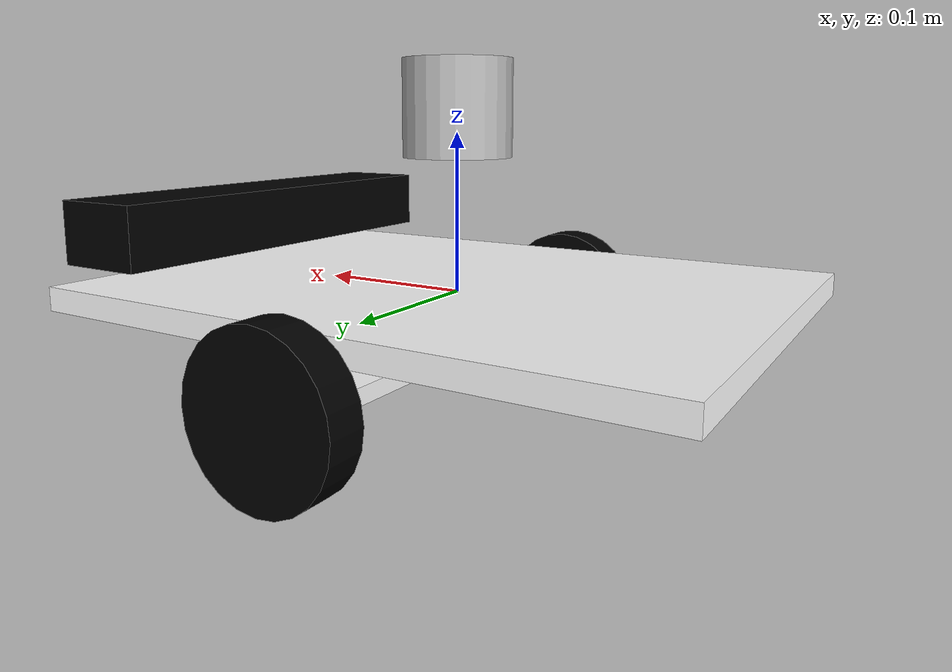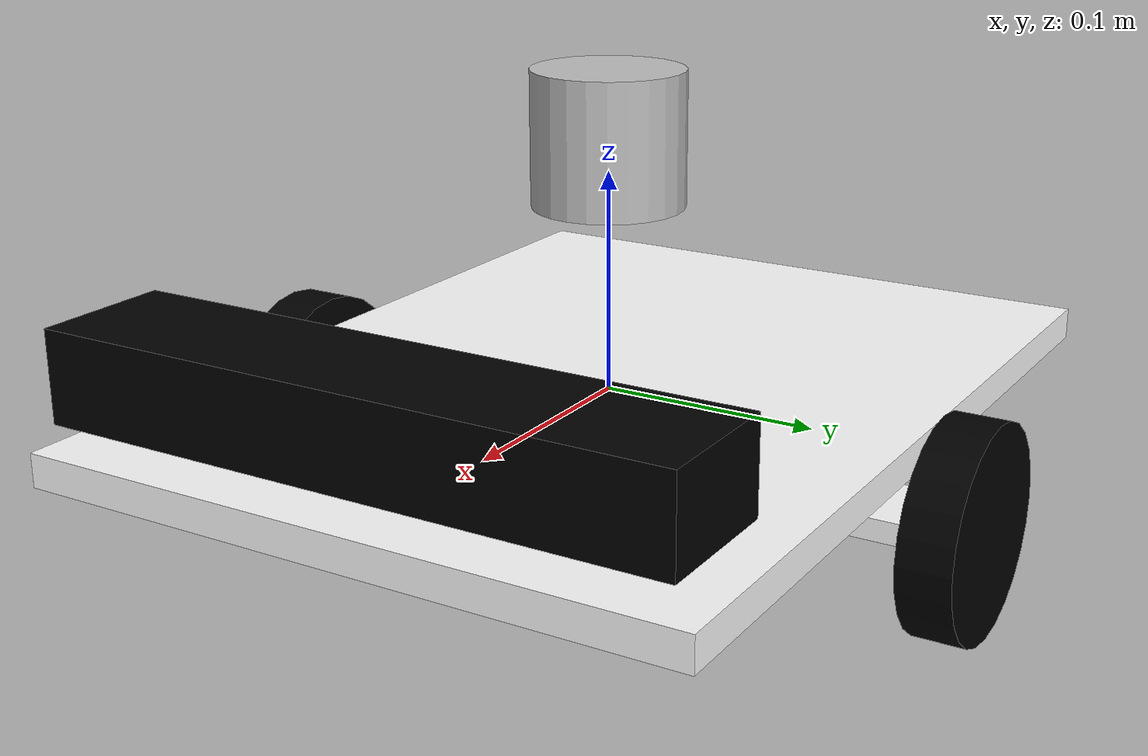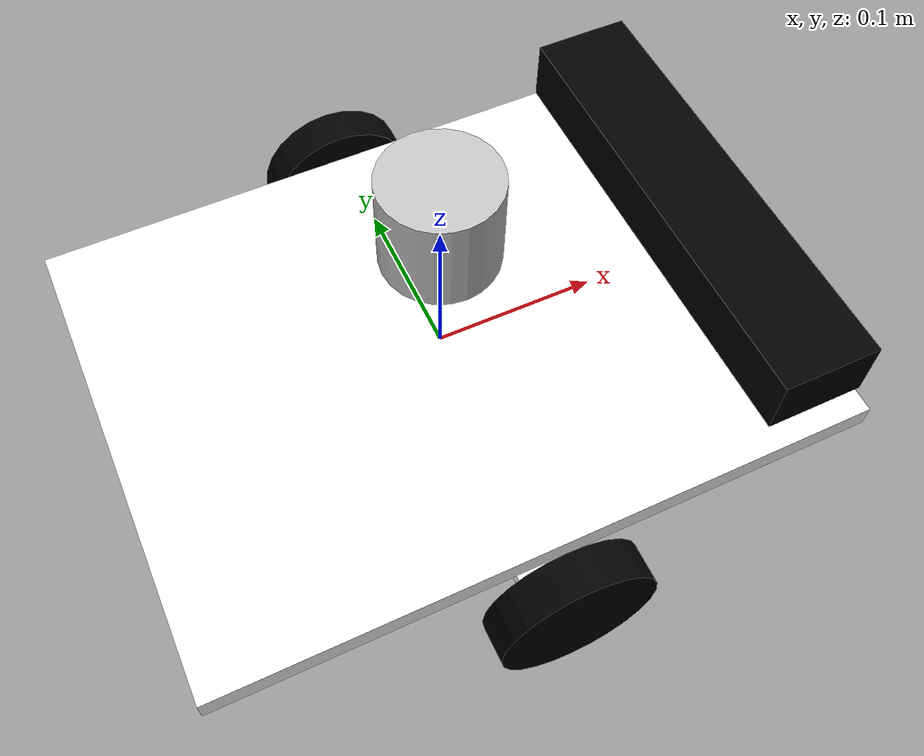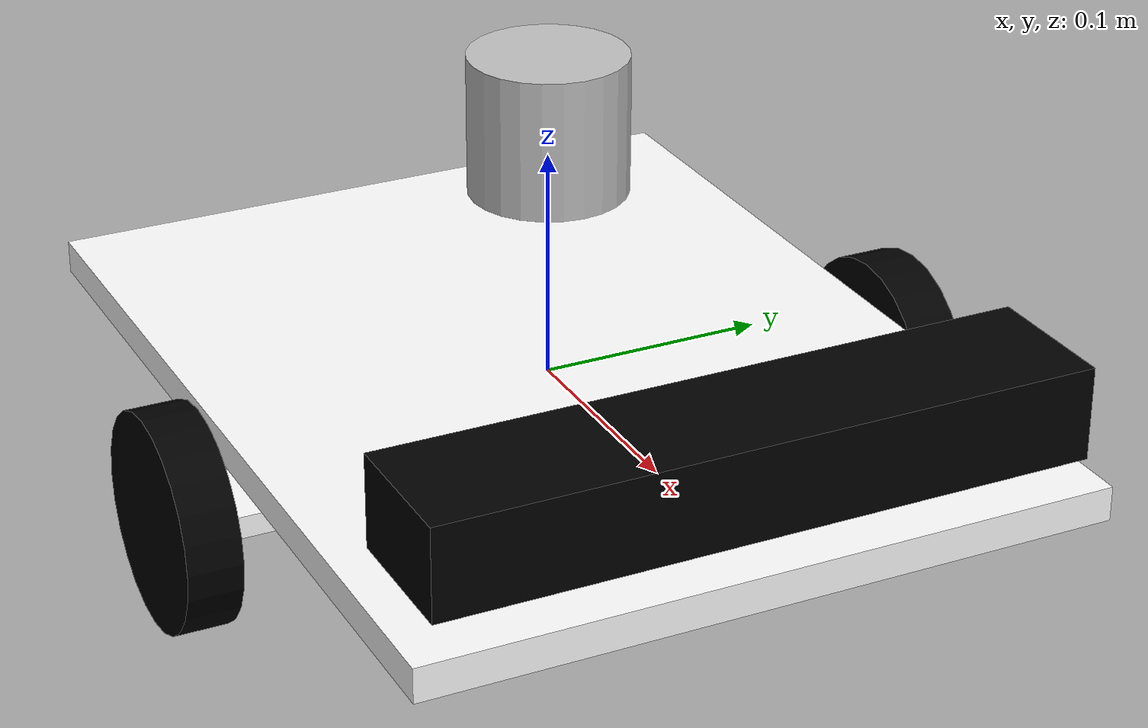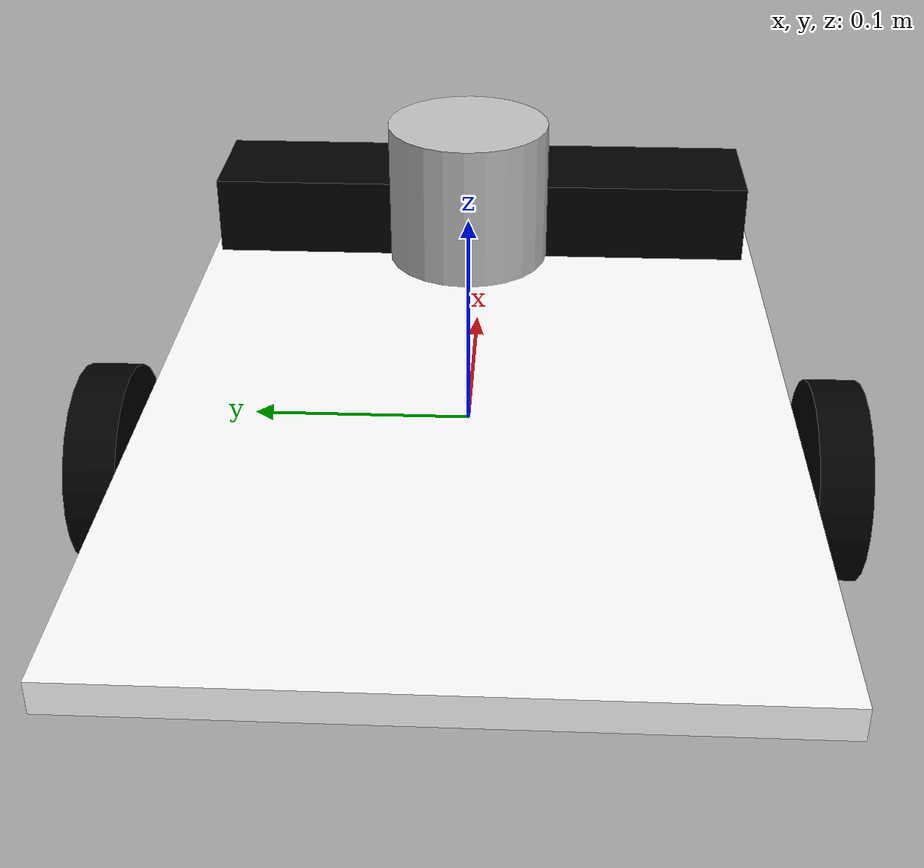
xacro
<?xml version="1.0"?>
<robot name="rosbot" xmlns:xacro="http://www.ros.org/wiki/xacro">
    <link name="base_link">
      <visual>
        <geometry>
          <box size="0.40 0.30 0.015"/>
        </geometry>
        <origin rpy="0 0 0" xyz="0 0 0"/>
        <material name="white">
          <color rgba="1 1 1 1"/>
        </material>
      </visual>
    </link>

    <link name="wheel_left">
      <visual>
        <geometry>
          <cylinder length="0.024" radius="0.0475"/>
        </geometry>
        <origin rpy="1.57 0 0" xyz="0 0.17 -0.03"/>
        <material name="black">
          <color rgba="0 0 0 1"/>
        </material>
      </visual>
    </link>

    <link name="wheel_right">
      <visual>
        <geometry>
          <cylinder length="0.024" radius="0.0475"/>
        </geometry>
        <origin rpy="1.57 0 0" xyz="0 -0.17 -0.03"/>
          <material name="black"/>
      </visual>
    </link>

    <link name="wheel_track">
      <visual>
        <geometry>
          <box size="0.04 0.34 0.01"/>
        </geometry>
        <origin rpy="0 0 0" xyz="0 0 -0.03"/>
        <material name="white"/>
      </visual>
    </link>

    <link name="camera_link">
      <visual>
        <geometry>
          <box size="0.06 0.28 0.04"/>
        </geometry>
        <origin rpy="0 0 0" xyz="0.165 0 0.04"/>
        <material name="black"/>
      </visual>
    </link>

    <link name="laser">
      <visual>
        <geometry>
          <cylinder length="0.06" radius="0.034"/>
        </geometry>
        <origin rpy="0 0 0" xyz="0 0 0.115"/>
        <material name="silver">
          <color rgba="192 192 192 0.6"/>
        </material>
      </visual>
    </link>

    <joint name="base_to_wheel_left" type="fixed">
      <parent link="base_link"/>
      <child link="wheel_left"/>
      <origin xyz="0 0 0"/>
    </joint>

    <joint name="base_to_wheel_right" type="fixed">
      <parent link="base_link"/>
      <child link="wheel_right"/>
      <origin xyz="0 0 0"/>
    </joint>

    <joint name="base_to_wheel_track" type="fixed">
      <parent link="base_link"/>
      <child link="wheel_track"/>
      <origin xyz="0 0 0"/>
    </joint>

    <joint name="base_to_camera_link" type="fixed">
      <parent link="base_link"/>
      <child link="camera_link"/>
      <origin xyz="0 0 0"/>
    </joint>

    <joint name="base_to_laser" type="fixed">
      <parent link="base_link"/>
      <child link="laser"/>
      <origin xyz="0 0 0"/>
    </joint>
</robot>
